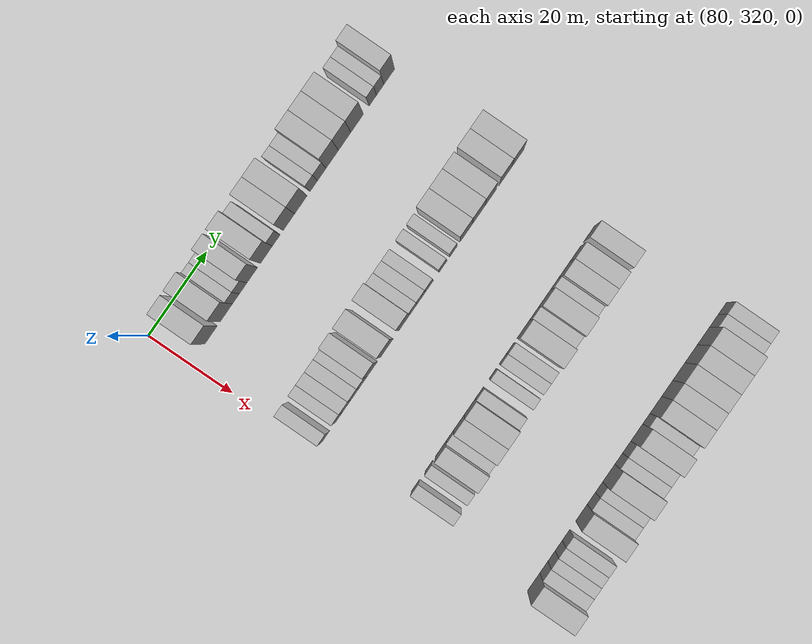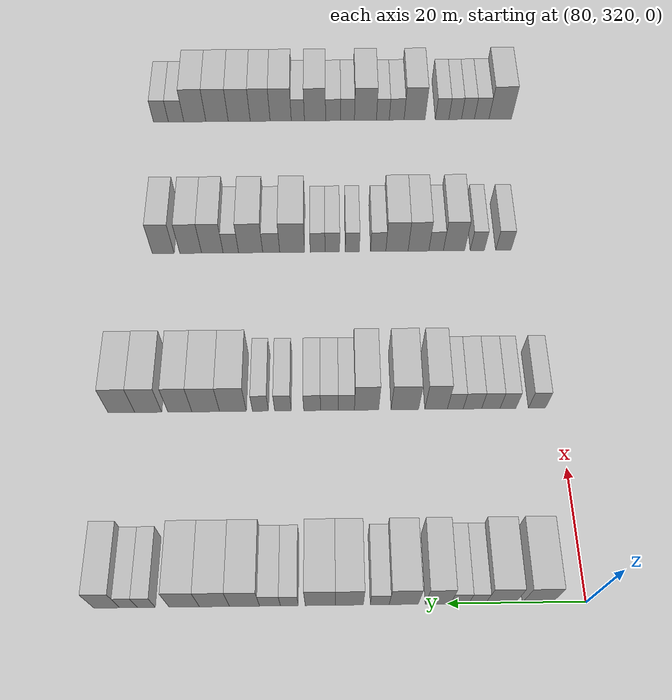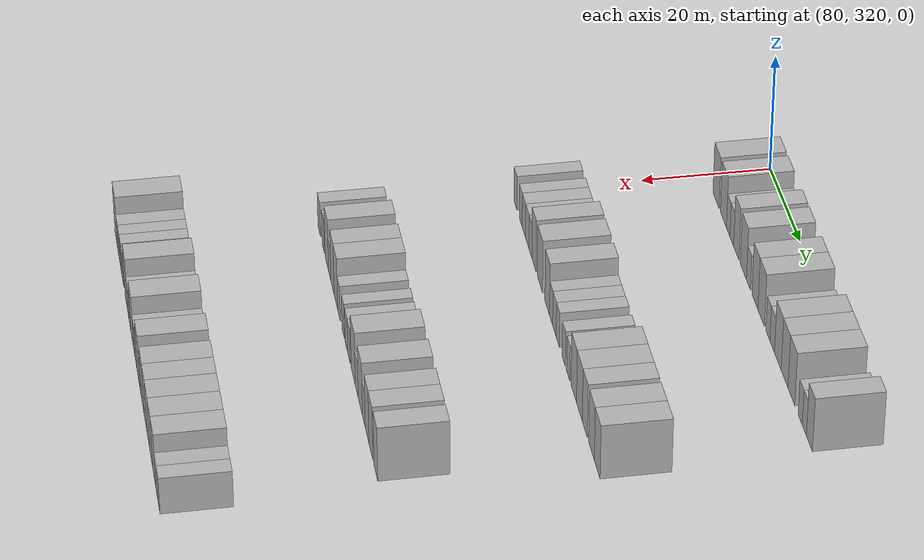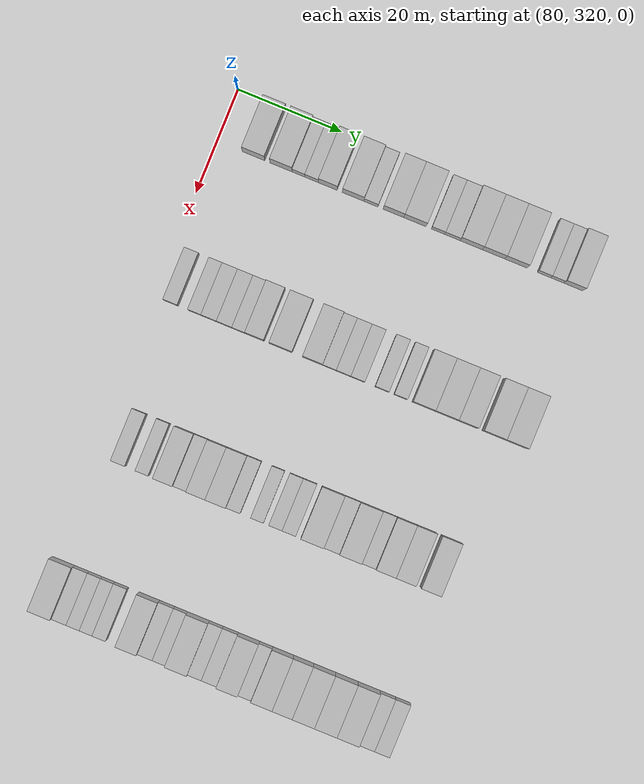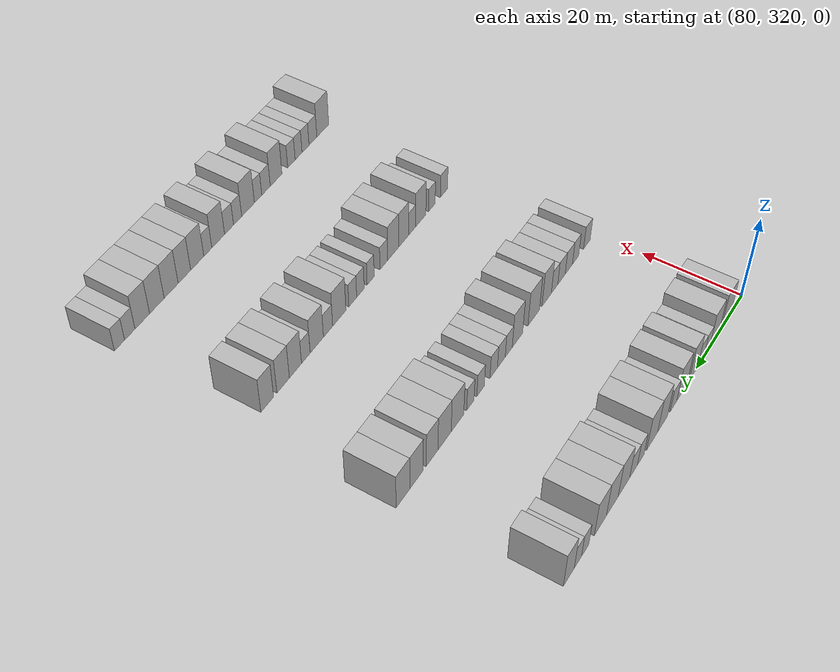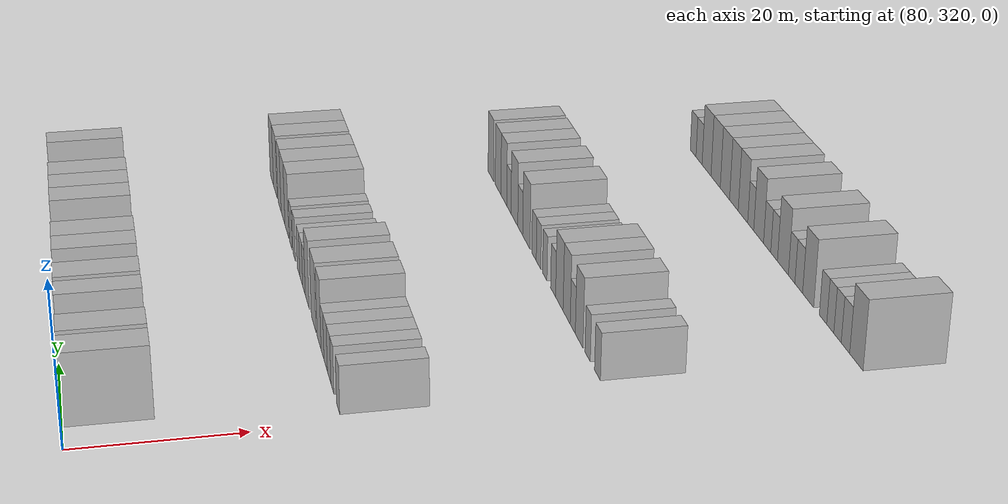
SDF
<sdf version="1.6">
 <world name="default">
  <model name="building_641">
   <static>1</static>
   <pose>85.0000 327.0835 0 0.000000 0.000000 0.000000</pose>
   <link name="link">
    <pose>0 0 4.50 0 0 0</pose>
    <collision name="collision"><geometry><box><size>10.0000 4.3480 9.0000</size></box></geometry></collision>
    <visual name="visual">
     <cast_shadows>0</cast_shadows>
     <geometry><box><size>10.0000 4.3480 9.0000</size></box></geometry>
     <material>
      <script>
       <uri>model://HANNAS_wall/materials/scripts</uri>
       <uri>model://HANNAS_wall/materials/textures</uri>
       <name>vrc/HANNAS_wall</name>
      </script>
     </material>
    </visual>
   </link>
  </model>
  <model name="building_642">
   <static>1</static>
   <pose>85.0000 332.3944 0 0.000000 0.000000 0.000000</pose>
   <link name="link">
    <pose>0 0 4.50 0 0 0</pose>
    <collision name="collision"><geometry><box><size>10.0000 4.2738 9.0000</size></box></geometry></collision>
    <visual name="visual">
     <cast_shadows>0</cast_shadows>
     <geometry><box><size>10.0000 4.2738 9.0000</size></box></geometry>
     <material>
      <script>
       <uri>model://HANNAS_wall/materials/scripts</uri>
       <uri>model://HANNAS_wall/materials/textures</uri>
       <name>vrc/HANNAS_wall</name>
      </script>
     </material>
    </visual>
   </link>
  </model>
  <model name="building_643">
   <static>1</static>
   <pose>85.0000 335.7473 0 0.000000 0.000000 0.000000</pose>
   <link name="link">
    <pose>0 0 3.00 0 0 0</pose>
    <collision name="collision"><geometry><box><size>10.0000 2.4318 6.0000</size></box></geometry></collision>
    <visual name="visual">
     <cast_shadows>0</cast_shadows>
     <geometry><box><size>10.0000 2.4318 6.0000</size></box></geometry>
     <material>
      <script>
       <uri>model://HANNAS_wall/materials/scripts</uri>
       <uri>model://HANNAS_wall/materials/textures</uri>
       <name>vrc/HANNAS_wall</name>
      </script>
     </material>
    </visual>
   </link>
  </model>
  <model name="building_644">
   <static>1</static>
   <pose>85.0000 338.2707 0 0.000000 0.000000 0.000000</pose>
   <link name="link">
    <pose>0 0 3.00 0 0 0</pose>
    <collision name="collision"><geometry><box><size>10.0000 2.6150 6.0000</size></box></geometry></collision>
    <visual name="visual">
     <cast_shadows>0</cast_shadows>
     <geometry><box><size>10.0000 2.6150 6.0000</size></box></geometry>
     <material>
      <script>
       <uri>model://HANNAS_wall/materials/scripts</uri>
       <uri>model://HANNAS_wall/materials/textures</uri>
       <name>vrc/HANNAS_wall</name>
      </script>
     </material>
    </visual>
   </link>
  </model>
  <model name="building_645">
   <static>1</static>
   <pose>85.0000 341.4043 0 0.000000 0.000000 0.000000</pose>
   <link name="link">
    <pose>0 0 4.50 0 0 0</pose>
    <collision name="collision"><geometry><box><size>10.0000 3.6523 9.0000</size></box></geometry></collision>
    <visual name="visual">
     <cast_shadows>0</cast_shadows>
     <geometry><box><size>10.0000 3.6523 9.0000</size></box></geometry>
     <material>
      <script>
       <uri>model://HANNAS_wall/materials/scripts</uri>
       <uri>model://HANNAS_wall/materials/textures</uri>
       <name>vrc/HANNAS_wall</name>
      </script>
     </material>
    </visual>
   </link>
  </model>
  <model name="building_646">
   <static>1</static>
   <pose>85.0000 346.3137 0 0.000000 0.000000 0.000000</pose>
   <link name="link">
    <pose>0 0 4.50 0 0 0</pose>
    <collision name="collision"><geometry><box><size>10.0000 4.1664 9.0000</size></box></geometry></collision>
    <visual name="visual">
     <cast_shadows>0</cast_shadows>
     <geometry><box><size>10.0000 4.1664 9.0000</size></box></geometry>
     <material>
      <script>
       <uri>model://HANNAS_wall/materials/scripts</uri>
       <uri>model://HANNAS_wall/materials/textures</uri>
       <name>vrc/HANNAS_wall</name>
      </script>
     </material>
    </visual>
   </link>
  </model>
  <model name="building_647">
   <static>1</static>
   <pose>85.0000 349.7582 0 0.000000 0.000000 0.000000</pose>
   <link name="link">
    <pose>0 0 3.00 0 0 0</pose>
    <collision name="collision"><geometry><box><size>10.0000 2.7225 6.0000</size></box></geometry></collision>
    <visual name="visual">
     <cast_shadows>0</cast_shadows>
     <geometry><box><size>10.0000 2.7225 6.0000</size></box></geometry>
     <material>
      <script>
       <uri>model://HANNAS_wall/materials/scripts</uri>
       <uri>model://HANNAS_wall/materials/textures</uri>
       <name>vrc/HANNAS_wall</name>
      </script>
     </material>
    </visual>
   </link>
  </model>
  <model name="building_648">
   <static>1</static>
   <pose>85.0000 354.1188 0 0.000000 0.000000 0.000000</pose>
   <link name="link">
    <pose>0 0 4.50 0 0 0</pose>
    <collision name="collision"><geometry><box><size>10.0000 3.9986 9.0000</size></box></geometry></collision>
    <visual name="visual">
     <cast_shadows>0</cast_shadows>
     <geometry><box><size>10.0000 3.9986 9.0000</size></box></geometry>
     <material>
      <script>
       <uri>model://HANNAS_wall/materials/scripts</uri>
       <uri>model://HANNAS_wall/materials/textures</uri>
       <name>vrc/HANNAS_wall</name>
      </script>
     </material>
    </visual>
   </link>
  </model>
  <model name="building_649">
   <static>1</static>
   <pose>85.0000 358.2789 0 0.000000 0.000000 0.000000</pose>
   <link name="link">
    <pose>0 0 4.50 0 0 0</pose>
    <collision name="collision"><geometry><box><size>10.0000 4.3215 9.0000</size></box></geometry></collision>
    <visual name="visual">
     <cast_shadows>0</cast_shadows>
     <geometry><box><size>10.0000 4.3215 9.0000</size></box></geometry>
     <material>
      <script>
       <uri>model://HANNAS_wall/materials/scripts</uri>
       <uri>model://HANNAS_wall/materials/textures</uri>
       <name>vrc/HANNAS_wall</name>
      </script>
     </material>
    </visual>
   </link>
  </model>
  <model name="building_650">
   <static>1</static>
   <pose>85.0000 362.7246 0 0.000000 0.000000 0.000000</pose>
   <link name="link">
    <pose>0 0 3.00 0 0 0</pose>
    <collision name="collision"><geometry><box><size>10.0000 2.5699 6.0000</size></box></geometry></collision>
    <visual name="visual">
     <cast_shadows>0</cast_shadows>
     <geometry><box><size>10.0000 2.5699 6.0000</size></box></geometry>
     <material>
      <script>
       <uri>model://HANNAS_wall/materials/scripts</uri>
       <uri>model://HANNAS_wall/materials/textures</uri>
       <name>vrc/HANNAS_wall</name>
      </script>
     </material>
    </visual>
   </link>
  </model>
  <model name="building_651">
   <static>1</static>
   <pose>85.0000 365.4991 0 0.000000 0.000000 0.000000</pose>
   <link name="link">
    <pose>0 0 3.00 0 0 0</pose>
    <collision name="collision"><geometry><box><size>10.0000 2.9791 6.0000</size></box></geometry></collision>
    <visual name="visual">
     <cast_shadows>0</cast_shadows>
     <geometry><box><size>10.0000 2.9791 6.0000</size></box></geometry>
     <material>
      <script>
       <uri>model://HANNAS_wall/materials/scripts</uri>
       <uri>model://HANNAS_wall/materials/textures</uri>
       <name>vrc/HANNAS_wall</name>
      </script>
     </material>
    </visual>
   </link>
  </model>
  <model name="building_652">
   <static>1</static>
   <pose>85.0000 369.1368 0 0.000000 0.000000 0.000000</pose>
   <link name="link">
    <pose>0 0 4.50 0 0 0</pose>
    <collision name="collision"><geometry><box><size>10.0000 4.2963 9.0000</size></box></geometry></collision>
    <visual name="visual">
     <cast_shadows>0</cast_shadows>
     <geometry><box><size>10.0000 4.2963 9.0000</size></box></geometry>
     <material>
      <script>
       <uri>model://HANNAS_wall/materials/scripts</uri>
       <uri>model://HANNAS_wall/materials/textures</uri>
       <name>vrc/HANNAS_wall</name>
      </script>
     </material>
    </visual>
   </link>
  </model>
  <model name="building_653">
   <static>1</static>
   <pose>85.0000 373.4469 0 0.000000 0.000000 0.000000</pose>
   <link name="link">
    <pose>0 0 4.50 0 0 0</pose>
    <collision name="collision"><geometry><box><size>10.0000 4.3239 9.0000</size></box></geometry></collision>
    <visual name="visual">
     <cast_shadows>0</cast_shadows>
     <geometry><box><size>10.0000 4.3239 9.0000</size></box></geometry>
     <material>
      <script>
       <uri>model://HANNAS_wall/materials/scripts</uri>
       <uri>model://HANNAS_wall/materials/textures</uri>
       <name>vrc/HANNAS_wall</name>
      </script>
     </material>
    </visual>
   </link>
  </model>
  <model name="building_654">
   <static>1</static>
   <pose>85.0000 377.7782 0 0.000000 0.000000 0.000000</pose>
   <link name="link">
    <pose>0 0 4.50 0 0 0</pose>
    <collision name="collision"><geometry><box><size>10.0000 4.3388 9.0000</size></box></geometry></collision>
    <visual name="visual">
     <cast_shadows>0</cast_shadows>
     <geometry><box><size>10.0000 4.3388 9.0000</size></box></geometry>
     <material>
      <script>
       <uri>model://HANNAS_wall/materials/scripts</uri>
       <uri>model://HANNAS_wall/materials/textures</uri>
       <name>vrc/HANNAS_wall</name>
      </script>
     </material>
    </visual>
   </link>
  </model>
  <model name="building_655">
   <static>1</static>
   <pose>85.0000 383.2173 0 0.000000 0.000000 0.000000</pose>
   <link name="link">
    <pose>0 0 3.00 0 0 0</pose>
    <collision name="collision"><geometry><box><size>10.0000 2.5394 6.0000</size></box></geometry></collision>
    <visual name="visual">
     <cast_shadows>0</cast_shadows>
     <geometry><box><size>10.0000 2.5394 6.0000</size></box></geometry>
     <material>
      <script>
       <uri>model://HANNAS_wall/materials/scripts</uri>
       <uri>model://HANNAS_wall/materials/textures</uri>
       <name>vrc/HANNAS_wall</name>
      </script>
     </material>
    </visual>
   </link>
  </model>
  <model name="building_656">
   <static>1</static>
   <pose>85.0000 385.7587 0 0.000000 0.000000 0.000000</pose>
   <link name="link">
    <pose>0 0 3.00 0 0 0</pose>
    <collision name="collision"><geometry><box><size>10.0000 2.5435 6.0000</size></box></geometry></collision>
    <visual name="visual">
     <cast_shadows>0</cast_shadows>
     <geometry><box><size>10.0000 2.5435 6.0000</size></box></geometry>
     <material>
      <script>
       <uri>model://HANNAS_wall/materials/scripts</uri>
       <uri>model://HANNAS_wall/materials/textures</uri>
       <name>vrc/HANNAS_wall</name>
      </script>
     </material>
    </visual>
   </link>
  </model>
  <model name="building_657">
   <static>1</static>
   <pose>85.0000 388.8787 0 0.000000 0.000000 0.000000</pose>
   <link name="link">
    <pose>0 0 4.50 0 0 0</pose>
    <collision name="collision"><geometry><box><size>10.0000 3.6963 9.0000</size></box></geometry></collision>
    <visual name="visual">
     <cast_shadows>0</cast_shadows>
     <geometry><box><size>10.0000 3.6963 9.0000</size></box></geometry>
     <material>
      <script>
       <uri>model://HANNAS_wall/materials/scripts</uri>
       <uri>model://HANNAS_wall/materials/textures</uri>
       <name>vrc/HANNAS_wall</name>
      </script>
     </material>
    </visual>
   </link>
  </model>
  <model name="building_858">
   <static>1</static>
   <pose>115.0000 323.4504 0 0.000000 0.000000 0.000000</pose>
   <link name="link">
    <pose>0 0 3.00 0 0 0</pose>
    <collision name="collision"><geometry><box><size>10.0000 2.7388 6.0000</size></box></geometry></collision>
    <visual name="visual">
     <cast_shadows>0</cast_shadows>
     <geometry><box><size>10.0000 2.7388 6.0000</size></box></geometry>
     <material>
      <script>
       <uri>model://HANNAS_wall/materials/scripts</uri>
       <uri>model://HANNAS_wall/materials/textures</uri>
       <name>vrc/HANNAS_wall</name>
      </script>
     </material>
    </visual>
   </link>
  </model>
  <model name="building_859">
   <static>1</static>
   <pose>115.0000 328.0915 0 0.000000 0.000000 0.000000</pose>
   <link name="link">
    <pose>0 0 3.00 0 0 0</pose>
    <collision name="collision"><geometry><box><size>10.0000 2.5435 6.0000</size></box></geometry></collision>
    <visual name="visual">
     <cast_shadows>0</cast_shadows>
     <geometry><box><size>10.0000 2.5435 6.0000</size></box></geometry>
     <material>
      <script>
       <uri>model://HANNAS_wall/materials/scripts</uri>
       <uri>model://HANNAS_wall/materials/textures</uri>
       <name>vrc/HANNAS_wall</name>
      </script>
     </material>
    </visual>
   </link>
  </model>
  <model name="building_860">
   <static>1</static>
   <pose>115.0000 330.8467 0 0.000000 0.000000 0.000000</pose>
   <link name="link">
    <pose>0 0 3.00 0 0 0</pose>
    <collision name="collision"><geometry><box><size>10.0000 2.9669 6.0000</size></box></geometry></collision>
    <visual name="visual">
     <cast_shadows>0</cast_shadows>
     <geometry><box><size>10.0000 2.9669 6.0000</size></box></geometry>
     <material>
      <script>
       <uri>model://HANNAS_wall/materials/scripts</uri>
       <uri>model://HANNAS_wall/materials/textures</uri>
       <name>vrc/HANNAS_wall</name>
      </script>
     </material>
    </visual>
   </link>
  </model>
  <model name="building_861">
   <static>1</static>
   <pose>115.0000 333.8036 0 0.000000 0.000000 0.000000</pose>
   <link name="link">
    <pose>0 0 3.00 0 0 0</pose>
    <collision name="collision"><geometry><box><size>10.0000 2.9470 6.0000</size></box></geometry></collision>
    <visual name="visual">
     <cast_shadows>0</cast_shadows>
     <geometry><box><size>10.0000 2.9470 6.0000</size></box></geometry>
     <material>
      <script>
       <uri>model://HANNAS_wall/materials/scripts</uri>
       <uri>model://HANNAS_wall/materials/textures</uri>
       <name>vrc/HANNAS_wall</name>
      </script>
     </material>
    </visual>
   </link>
  </model>
  <model name="building_862">
   <static>1</static>
   <pose>115.0000 336.5485 0 0.000000 0.000000 0.000000</pose>
   <link name="link">
    <pose>0 0 3.00 0 0 0</pose>
    <collision name="collision"><geometry><box><size>10.0000 2.5428 6.0000</size></box></geometry></collision>
    <visual name="visual">
     <cast_shadows>0</cast_shadows>
     <geometry><box><size>10.0000 2.5428 6.0000</size></box></geometry>
     <material>
      <script>
       <uri>model://HANNAS_wall/materials/scripts</uri>
       <uri>model://HANNAS_wall/materials/textures</uri>
       <name>vrc/HANNAS_wall</name>
      </script>
     </material>
    </visual>
   </link>
  </model>
  <model name="building_863">
   <static>1</static>
   <pose>115.0000 339.6307 0 0.000000 0.000000 0.000000</pose>
   <link name="link">
    <pose>0 0 4.50 0 0 0</pose>
    <collision name="collision"><geometry><box><size>10.0000 3.6214 9.0000</size></box></geometry></collision>
    <visual name="visual">
     <cast_shadows>0</cast_shadows>
     <geometry><box><size>10.0000 3.6214 9.0000</size></box></geometry>
     <material>
      <script>
       <uri>model://HANNAS_wall/materials/scripts</uri>
       <uri>model://HANNAS_wall/materials/textures</uri>
       <name>vrc/HANNAS_wall</name>
      </script>
     </material>
    </visual>
   </link>
  </model>
  <model name="building_864">
   <static>1</static>
   <pose>115.0000 344.6420 0 0.000000 0.000000 0.000000</pose>
   <link name="link">
    <pose>0 0 4.50 0 0 0</pose>
    <collision name="collision"><geometry><box><size>10.0000 4.4013 9.0000</size></box></geometry></collision>
    <visual name="visual">
     <cast_shadows>0</cast_shadows>
     <geometry><box><size>10.0000 4.4013 9.0000</size></box></geometry>
     <material>
      <script>
       <uri>model://HANNAS_wall/materials/scripts</uri>
       <uri>model://HANNAS_wall/materials/textures</uri>
       <name>vrc/HANNAS_wall</name>
      </script>
     </material>
    </visual>
   </link>
  </model>
  <model name="building_865">
   <static>1</static>
   <pose>115.0000 350.7802 0 0.000000 0.000000 0.000000</pose>
   <link name="link">
    <pose>0 0 4.50 0 0 0</pose>
    <collision name="collision"><geometry><box><size>10.0000 3.8751 9.0000</size></box></geometry></collision>
    <visual name="visual">
     <cast_shadows>0</cast_shadows>
     <geometry><box><size>10.0000 3.8751 9.0000</size></box></geometry>
     <material>
      <script>
       <uri>model://HANNAS_wall/materials/scripts</uri>
       <uri>model://HANNAS_wall/materials/textures</uri>
       <name>vrc/HANNAS_wall</name>
      </script>
     </material>
    </visual>
   </link>
  </model>
  <model name="building_866">
   <static>1</static>
   <pose>115.0000 354.0044 0 0.000000 0.000000 0.000000</pose>
   <link name="link">
    <pose>0 0 3.00 0 0 0</pose>
    <collision name="collision"><geometry><box><size>10.0000 2.5733 6.0000</size></box></geometry></collision>
    <visual name="visual">
     <cast_shadows>0</cast_shadows>
     <geometry><box><size>10.0000 2.5733 6.0000</size></box></geometry>
     <material>
      <script>
       <uri>model://HANNAS_wall/materials/scripts</uri>
       <uri>model://HANNAS_wall/materials/textures</uri>
       <name>vrc/HANNAS_wall</name>
      </script>
     </material>
    </visual>
   </link>
  </model>
  <model name="building_867">
   <static>1</static>
   <pose>115.0000 356.7037 0 0.000000 0.000000 0.000000</pose>
   <link name="link">
    <pose>0 0 3.00 0 0 0</pose>
    <collision name="collision"><geometry><box><size>10.0000 2.8254 6.0000</size></box></geometry></collision>
    <visual name="visual">
     <cast_shadows>0</cast_shadows>
     <geometry><box><size>10.0000 2.8254 6.0000</size></box></geometry>
     <material>
      <script>
       <uri>model://HANNAS_wall/materials/scripts</uri>
       <uri>model://HANNAS_wall/materials/textures</uri>
       <name>vrc/HANNAS_wall</name>
      </script>
     </material>
    </visual>
   </link>
  </model>
  <model name="building_868">
   <static>1</static>
   <pose>115.0000 359.4641 0 0.000000 0.000000 0.000000</pose>
   <link name="link">
    <pose>0 0 3.00 0 0 0</pose>
    <collision name="collision"><geometry><box><size>10.0000 2.6953 6.0000</size></box></geometry></collision>
    <visual name="visual">
     <cast_shadows>0</cast_shadows>
     <geometry><box><size>10.0000 2.6953 6.0000</size></box></geometry>
     <material>
      <script>
       <uri>model://HANNAS_wall/materials/scripts</uri>
       <uri>model://HANNAS_wall/materials/textures</uri>
       <name>vrc/HANNAS_wall</name>
      </script>
     </material>
    </visual>
   </link>
  </model>
  <model name="building_869">
   <static>1</static>
   <pose>115.0000 364.1347 0 0.000000 0.000000 0.000000</pose>
   <link name="link">
    <pose>0 0 3.00 0 0 0</pose>
    <collision name="collision"><geometry><box><size>10.0000 2.6460 6.0000</size></box></geometry></collision>
    <visual name="visual">
     <cast_shadows>0</cast_shadows>
     <geometry><box><size>10.0000 2.6460 6.0000</size></box></geometry>
     <material>
      <script>
       <uri>model://HANNAS_wall/materials/scripts</uri>
       <uri>model://HANNAS_wall/materials/textures</uri>
       <name>vrc/HANNAS_wall</name>
      </script>
     </material>
    </visual>
   </link>
  </model>
  <model name="building_870">
   <static>1</static>
   <pose>115.0000 367.7292 0 0.000000 0.000000 0.000000</pose>
   <link name="link">
    <pose>0 0 3.00 0 0 0</pose>
    <collision name="collision"><geometry><box><size>10.0000 2.5431 6.0000</size></box></geometry></collision>
    <visual name="visual">
     <cast_shadows>0</cast_shadows>
     <geometry><box><size>10.0000 2.5431 6.0000</size></box></geometry>
     <material>
      <script>
       <uri>model://HANNAS_wall/materials/scripts</uri>
       <uri>model://HANNAS_wall/materials/textures</uri>
       <name>vrc/HANNAS_wall</name>
      </script>
     </material>
    </visual>
   </link>
  </model>
  <model name="building_871">
   <static>1</static>
   <pose>115.0000 372.1382 0 0.000000 0.000000 0.000000</pose>
   <link name="link">
    <pose>0 0 4.50 0 0 0</pose>
    <collision name="collision"><geometry><box><size>10.0000 4.2748 9.0000</size></box></geometry></collision>
    <visual name="visual">
     <cast_shadows>0</cast_shadows>
     <geometry><box><size>10.0000 4.2748 9.0000</size></box></geometry>
     <material>
      <script>
       <uri>model://HANNAS_wall/materials/scripts</uri>
       <uri>model://HANNAS_wall/materials/textures</uri>
       <name>vrc/HANNAS_wall</name>
      </script>
     </material>
    </visual>
   </link>
  </model>
  <model name="building_872">
   <static>1</static>
   <pose>115.0000 376.4877 0 0.000000 0.000000 0.000000</pose>
   <link name="link">
    <pose>0 0 4.50 0 0 0</pose>
    <collision name="collision"><geometry><box><size>10.0000 4.4242 9.0000</size></box></geometry></collision>
    <visual name="visual">
     <cast_shadows>0</cast_shadows>
     <geometry><box><size>10.0000 4.4242 9.0000</size></box></geometry>
     <material>
      <script>
       <uri>model://HANNAS_wall/materials/scripts</uri>
       <uri>model://HANNAS_wall/materials/textures</uri>
       <name>vrc/HANNAS_wall</name>
      </script>
     </material>
    </visual>
   </link>
  </model>
  <model name="building_873">
   <static>1</static>
   <pose>115.0000 380.6151 0 0.000000 0.000000 0.000000</pose>
   <link name="link">
    <pose>0 0 4.50 0 0 0</pose>
    <collision name="collision"><geometry><box><size>10.0000 3.8306 9.0000</size></box></geometry></collision>
    <visual name="visual">
     <cast_shadows>0</cast_shadows>
     <geometry><box><size>10.0000 3.8306 9.0000</size></box></geometry>
     <material>
      <script>
       <uri>model://HANNAS_wall/materials/scripts</uri>
       <uri>model://HANNAS_wall/materials/textures</uri>
       <name>vrc/HANNAS_wall</name>
      </script>
     </material>
    </visual>
   </link>
  </model>
  <model name="building_874">
   <static>1</static>
   <pose>115.0000 385.6731 0 0.000000 0.000000 0.000000</pose>
   <link name="link">
    <pose>0 0 4.50 0 0 0</pose>
    <collision name="collision"><geometry><box><size>10.0000 4.2855 9.0000</size></box></geometry></collision>
    <visual name="visual">
     <cast_shadows>0</cast_shadows>
     <geometry><box><size>10.0000 4.2855 9.0000</size></box></geometry>
     <material>
      <script>
       <uri>model://HANNAS_wall/materials/scripts</uri>
       <uri>model://HANNAS_wall/materials/textures</uri>
       <name>vrc/HANNAS_wall</name>
      </script>
     </material>
    </visual>
   </link>
  </model>
  <model name="building_875">
   <static>1</static>
   <pose>115.0000 389.9492 0 0.000000 0.000000 0.000000</pose>
   <link name="link">
    <pose>0 0 4.50 0 0 0</pose>
    <collision name="collision"><geometry><box><size>10.0000 4.2667 9.0000</size></box></geometry></collision>
    <visual name="visual">
     <cast_shadows>0</cast_shadows>
     <geometry><box><size>10.0000 4.2667 9.0000</size></box></geometry>
     <material>
      <script>
       <uri>model://HANNAS_wall/materials/scripts</uri>
       <uri>model://HANNAS_wall/materials/textures</uri>
       <name>vrc/HANNAS_wall</name>
      </script>
     </material>
    </visual>
   </link>
  </model>
  <model name="building_1084">
   <static>1</static>
   <pose>145.0000 325.6955 0 0.000000 0.000000 0.000000</pose>
   <link name="link">
    <pose>0 0 3.00 0 0 0</pose>
    <collision name="collision"><geometry><box><size>10.0000 2.7199 6.0000</size></box></geometry></collision>
    <visual name="visual">
     <cast_shadows>0</cast_shadows>
     <geometry><box><size>10.0000 2.7199 6.0000</size></box></geometry>
     <material>
      <script>
       <uri>model://HANNAS_wall/materials/scripts</uri>
       <uri>model://HANNAS_wall/materials/textures</uri>
       <name>vrc/HANNAS_wall</name>
      </script>
     </material>
    </visual>
   </link>
  </model>
  <model name="building_1085">
   <static>1</static>
   <pose>145.0000 330.3037 0 0.000000 0.000000 0.000000</pose>
   <link name="link">
    <pose>0 0 3.00 0 0 0</pose>
    <collision name="collision"><geometry><box><size>10.0000 2.4966 6.0000</size></box></geometry></collision>
    <visual name="visual">
     <cast_shadows>0</cast_shadows>
     <geometry><box><size>10.0000 2.4966 6.0000</size></box></geometry>
     <material>
      <script>
       <uri>model://HANNAS_wall/materials/scripts</uri>
       <uri>model://HANNAS_wall/materials/textures</uri>
       <name>vrc/HANNAS_wall</name>
      </script>
     </material>
    </visual>
   </link>
  </model>
  <model name="building_1086">
   <static>1</static>
   <pose>145.0000 334.4331 0 0.000000 0.000000 0.000000</pose>
   <link name="link">
    <pose>0 0 4.50 0 0 0</pose>
    <collision name="collision"><geometry><box><size>10.0000 3.7621 9.0000</size></box></geometry></collision>
    <visual name="visual">
     <cast_shadows>0</cast_shadows>
     <geometry><box><size>10.0000 3.7621 9.0000</size></box></geometry>
     <material>
      <script>
       <uri>model://HANNAS_wall/materials/scripts</uri>
       <uri>model://HANNAS_wall/materials/textures</uri>
       <name>vrc/HANNAS_wall</name>
      </script>
     </material>
    </visual>
   </link>
  </model>
  <model name="building_1087">
   <static>1</static>
   <pose>145.0000 337.5975 0 0.000000 0.000000 0.000000</pose>
   <link name="link">
    <pose>0 0 3.00 0 0 0</pose>
    <collision name="collision"><geometry><box><size>10.0000 2.5667 6.0000</size></box></geometry></collision>
    <visual name="visual">
     <cast_shadows>0</cast_shadows>
     <geometry><box><size>10.0000 2.5667 6.0000</size></box></geometry>
     <material>
      <script>
       <uri>model://HANNAS_wall/materials/scripts</uri>
       <uri>model://HANNAS_wall/materials/textures</uri>
       <name>vrc/HANNAS_wall</name>
      </script>
     </material>
    </visual>
   </link>
  </model>
  <model name="building_1088">
   <static>1</static>
   <pose>145.0000 340.7137 0 0.000000 0.000000 0.000000</pose>
   <link name="link">
    <pose>0 0 4.50 0 0 0</pose>
    <collision name="collision"><geometry><box><size>10.0000 3.6656 9.0000</size></box></geometry></collision>
    <visual name="visual">
     <cast_shadows>0</cast_shadows>
     <geometry><box><size>10.0000 3.6656 9.0000</size></box></geometry>
     <material>
      <script>
       <uri>model://HANNAS_wall/materials/scripts</uri>
       <uri>model://HANNAS_wall/materials/textures</uri>
       <name>vrc/HANNAS_wall</name>
      </script>
     </material>
    </visual>
   </link>
  </model>
  <model name="building_1089">
   <static>1</static>
   <pose>145.0000 344.5123 0 0.000000 0.000000 0.000000</pose>
   <link name="link">
    <pose>0 0 4.50 0 0 0</pose>
    <collision name="collision"><geometry><box><size>10.0000 3.9318 9.0000</size></box></geometry></collision>
    <visual name="visual">
     <cast_shadows>0</cast_shadows>
     <geometry><box><size>10.0000 3.9318 9.0000</size></box></geometry>
     <material>
      <script>
       <uri>model://HANNAS_wall/materials/scripts</uri>
       <uri>model://HANNAS_wall/materials/textures</uri>
       <name>vrc/HANNAS_wall</name>
      </script>
     </material>
    </visual>
   </link>
  </model>
  <model name="building_1090">
   <static>1</static>
   <pose>145.0000 347.8252 0 0.000000 0.000000 0.000000</pose>
   <link name="link">
    <pose>0 0 3.00 0 0 0</pose>
    <collision name="collision"><geometry><box><size>10.0000 2.6939 6.0000</size></box></geometry></collision>
    <visual name="visual">
     <cast_shadows>0</cast_shadows>
     <geometry><box><size>10.0000 2.6939 6.0000</size></box></geometry>
     <material>
      <script>
       <uri>model://HANNAS_wall/materials/scripts</uri>
       <uri>model://HANNAS_wall/materials/textures</uri>
       <name>vrc/HANNAS_wall</name>
      </script>
     </material>
    </visual>
   </link>
  </model>
  <model name="building_1091">
   <static>1</static>
   <pose>145.0000 352.4085 0 0.000000 0.000000 0.000000</pose>
   <link name="link">
    <pose>0 0 3.00 0 0 0</pose>
    <collision name="collision"><geometry><box><size>10.0000 2.4729 6.0000</size></box></geometry></collision>
    <visual name="visual">
     <cast_shadows>0</cast_shadows>
     <geometry><box><size>10.0000 2.4729 6.0000</size></box></geometry>
     <material>
      <script>
       <uri>model://HANNAS_wall/materials/scripts</uri>
       <uri>model://HANNAS_wall/materials/textures</uri>
       <name>vrc/HANNAS_wall</name>
      </script>
     </material>
    </visual>
   </link>
  </model>
  <model name="building_1092">
   <static>1</static>
   <pose>145.0000 355.9290 0 0.000000 0.000000 0.000000</pose>
   <link name="link">
    <pose>0 0 3.00 0 0 0</pose>
    <collision name="collision"><geometry><box><size>10.0000 2.5680 6.0000</size></box></geometry></collision>
    <visual name="visual">
     <cast_shadows>0</cast_shadows>
     <geometry><box><size>10.0000 2.5680 6.0000</size></box></geometry>
     <material>
      <script>
       <uri>model://HANNAS_wall/materials/scripts</uri>
       <uri>model://HANNAS_wall/materials/textures</uri>
       <name>vrc/HANNAS_wall</name>
      </script>
     </material>
    </visual>
   </link>
  </model>
  <model name="building_1093">
   <static>1</static>
   <pose>145.0000 358.5207 0 0.000000 0.000000 0.000000</pose>
   <link name="link">
    <pose>0 0 3.00 0 0 0</pose>
    <collision name="collision"><geometry><box><size>10.0000 2.6156 6.0000</size></box></geometry></collision>
    <visual name="visual">
     <cast_shadows>0</cast_shadows>
     <geometry><box><size>10.0000 2.6156 6.0000</size></box></geometry>
     <material>
      <script>
       <uri>model://HANNAS_wall/materials/scripts</uri>
       <uri>model://HANNAS_wall/materials/textures</uri>
       <name>vrc/HANNAS_wall</name>
      </script>
     </material>
    </visual>
   </link>
  </model>
  <model name="building_1094">
   <static>1</static>
   <pose>145.0000 363.0227 0 0.000000 0.000000 0.000000</pose>
   <link name="link">
    <pose>0 0 4.50 0 0 0</pose>
    <collision name="collision"><geometry><box><size>10.0000 4.3883 9.0000</size></box></geometry></collision>
    <visual name="visual">
     <cast_shadows>0</cast_shadows>
     <geometry><box><size>10.0000 4.3883 9.0000</size></box></geometry>
     <material>
      <script>
       <uri>model://HANNAS_wall/materials/scripts</uri>
       <uri>model://HANNAS_wall/materials/textures</uri>
       <name>vrc/HANNAS_wall</name>
      </script>
     </material>
    </visual>
   </link>
  </model>
  <model name="building_1095">
   <static>1</static>
   <pose>145.0000 366.7168 0 0.000000 0.000000 0.000000</pose>
   <link name="link">
    <pose>0 0 3.00 0 0 0</pose>
    <collision name="collision"><geometry><box><size>10.0000 2.9999 6.0000</size></box></geometry></collision>
    <visual name="visual">
     <cast_shadows>0</cast_shadows>
     <geometry><box><size>10.0000 2.9999 6.0000</size></box></geometry>
     <material>
      <script>
       <uri>model://HANNAS_wall/materials/scripts</uri>
       <uri>model://HANNAS_wall/materials/textures</uri>
       <name>vrc/HANNAS_wall</name>
      </script>
     </material>
    </visual>
   </link>
  </model>
  <model name="building_1096">
   <static>1</static>
   <pose>145.0000 370.3455 0 0.000000 0.000000 0.000000</pose>
   <link name="link">
    <pose>0 0 4.50 0 0 0</pose>
    <collision name="collision"><geometry><box><size>10.0000 4.2575 9.0000</size></box></geometry></collision>
    <visual name="visual">
     <cast_shadows>0</cast_shadows>
     <geometry><box><size>10.0000 4.2575 9.0000</size></box></geometry>
     <material>
      <script>
       <uri>model://HANNAS_wall/materials/scripts</uri>
       <uri>model://HANNAS_wall/materials/textures</uri>
       <name>vrc/HANNAS_wall</name>
      </script>
     </material>
    </visual>
   </link>
  </model>
  <model name="building_1097">
   <static>1</static>
   <pose>145.0000 373.8391 0 0.000000 0.000000 0.000000</pose>
   <link name="link">
    <pose>0 0 3.00 0 0 0</pose>
    <collision name="collision"><geometry><box><size>10.0000 2.7296 6.0000</size></box></geometry></collision>
    <visual name="visual">
     <cast_shadows>0</cast_shadows>
     <geometry><box><size>10.0000 2.7296 6.0000</size></box></geometry>
     <material>
      <script>
       <uri>model://HANNAS_wall/materials/scripts</uri>
       <uri>model://HANNAS_wall/materials/textures</uri>
       <name>vrc/HANNAS_wall</name>
      </script>
     </material>
    </visual>
   </link>
  </model>
  <model name="building_1098">
   <static>1</static>
   <pose>145.0000 377.0995 0 0.000000 0.000000 0.000000</pose>
   <link name="link">
    <pose>0 0 4.50 0 0 0</pose>
    <collision name="collision"><geometry><box><size>10.0000 3.7912 9.0000</size></box></geometry></collision>
    <visual name="visual">
     <cast_shadows>0</cast_shadows>
     <geometry><box><size>10.0000 3.7912 9.0000</size></box></geometry>
     <material>
      <script>
       <uri>model://HANNAS_wall/materials/scripts</uri>
       <uri>model://HANNAS_wall/materials/textures</uri>
       <name>vrc/HANNAS_wall</name>
      </script>
     </material>
    </visual>
   </link>
  </model>
  <model name="building_1099">
   <static>1</static>
   <pose>145.0000 380.9121 0 0.000000 0.000000 0.000000</pose>
   <link name="link">
    <pose>0 0 4.50 0 0 0</pose>
    <collision name="collision"><geometry><box><size>10.0000 3.8341 9.0000</size></box></geometry></collision>
    <visual name="visual">
     <cast_shadows>0</cast_shadows>
     <geometry><box><size>10.0000 3.8341 9.0000</size></box></geometry>
     <material>
      <script>
       <uri>model://HANNAS_wall/materials/scripts</uri>
       <uri>model://HANNAS_wall/materials/textures</uri>
       <name>vrc/HANNAS_wall</name>
      </script>
     </material>
    </visual>
   </link>
  </model>
  <model name="building_1100">
   <static>1</static>
   <pose>145.0000 385.7484 0 0.000000 0.000000 0.000000</pose>
   <link name="link">
    <pose>0 0 4.50 0 0 0</pose>
    <collision name="collision"><geometry><box><size>10.0000 3.8385 9.0000</size></box></geometry></collision>
    <visual name="visual">
     <cast_shadows>0</cast_shadows>
     <geometry><box><size>10.0000 3.8385 9.0000</size></box></geometry>
     <material>
      <script>
       <uri>model://HANNAS_wall/materials/scripts</uri>
       <uri>model://HANNAS_wall/materials/textures</uri>
       <name>vrc/HANNAS_wall</name>
      </script>
     </material>
    </visual>
   </link>
  </model>
  <model name="building_1323">
   <static>1</static>
   <pose>175.0000 323.1653 0 0.000000 0.000000 0.000000</pose>
   <link name="link">
    <pose>0 0 4.50 0 0 0</pose>
    <collision name="collision"><geometry><box><size>10.0000 4.3554 9.0000</size></box></geometry></collision>
    <visual name="visual">
     <cast_shadows>0</cast_shadows>
     <geometry><box><size>10.0000 4.3554 9.0000</size></box></geometry>
     <material>
      <script>
       <uri>model://HANNAS_wall/materials/scripts</uri>
       <uri>model://HANNAS_wall/materials/textures</uri>
       <name>vrc/HANNAS_wall</name>
      </script>
     </material>
    </visual>
   </link>
  </model>
  <model name="building_1324">
   <static>1</static>
   <pose>175.0000 326.7488 0 0.000000 0.000000 0.000000</pose>
   <link name="link">
    <pose>0 0 3.00 0 0 0</pose>
    <collision name="collision"><geometry><box><size>10.0000 2.8116 6.0000</size></box></geometry></collision>
    <visual name="visual">
     <cast_shadows>0</cast_shadows>
     <geometry><box><size>10.0000 2.8116 6.0000</size></box></geometry>
     <material>
      <script>
       <uri>model://HANNAS_wall/materials/scripts</uri>
       <uri>model://HANNAS_wall/materials/textures</uri>
       <name>vrc/HANNAS_wall</name>
      </script>
     </material>
    </visual>
   </link>
  </model>
  <model name="building_1325">
   <static>1</static>
   <pose>175.0000 329.4085 0 0.000000 0.000000 0.000000</pose>
   <link name="link">
    <pose>0 0 3.00 0 0 0</pose>
    <collision name="collision"><geometry><box><size>10.0000 2.5078 6.0000</size></box></geometry></collision>
    <visual name="visual">
     <cast_shadows>0</cast_shadows>
     <geometry><box><size>10.0000 2.5078 6.0000</size></box></geometry>
     <material>
      <script>
       <uri>model://HANNAS_wall/materials/scripts</uri>
       <uri>model://HANNAS_wall/materials/textures</uri>
       <name>vrc/HANNAS_wall</name>
      </script>
     </material>
    </visual>
   </link>
  </model>
  <model name="building_1326">
   <static>1</static>
   <pose>175.0000 331.8836 0 0.000000 0.000000 0.000000</pose>
   <link name="link">
    <pose>0 0 3.00 0 0 0</pose>
    <collision name="collision"><geometry><box><size>10.0000 2.4424 6.0000</size></box></geometry></collision>
    <visual name="visual">
     <cast_shadows>0</cast_shadows>
     <geometry><box><size>10.0000 2.4424 6.0000</size></box></geometry>
     <material>
      <script>
       <uri>model://HANNAS_wall/materials/scripts</uri>
       <uri>model://HANNAS_wall/materials/textures</uri>
       <name>vrc/HANNAS_wall</name>
      </script>
     </material>
    </visual>
   </link>
  </model>
  <model name="building_1327">
   <static>1</static>
   <pose>175.0000 334.4055 0 0.000000 0.000000 0.000000</pose>
   <link name="link">
    <pose>0 0 3.00 0 0 0</pose>
    <collision name="collision"><geometry><box><size>10.0000 2.6013 6.0000</size></box></geometry></collision>
    <visual name="visual">
     <cast_shadows>0</cast_shadows>
     <geometry><box><size>10.0000 2.6013 6.0000</size></box></geometry>
     <material>
      <script>
       <uri>model://HANNAS_wall/materials/scripts</uri>
       <uri>model://HANNAS_wall/materials/textures</uri>
       <name>vrc/HANNAS_wall</name>
      </script>
     </material>
    </visual>
   </link>
  </model>
  <model name="building_1328">
   <static>1</static>
   <pose>175.0000 339.7313 0 0.000000 0.000000 0.000000</pose>
   <link name="link">
    <pose>0 0 4.50 0 0 0</pose>
    <collision name="collision"><geometry><box><size>10.0000 4.0503 9.0000</size></box></geometry></collision>
    <visual name="visual">
     <cast_shadows>0</cast_shadows>
     <geometry><box><size>10.0000 4.0503 9.0000</size></box></geometry>
     <material>
      <script>
       <uri>model://HANNAS_wall/materials/scripts</uri>
       <uri>model://HANNAS_wall/materials/textures</uri>
       <name>vrc/HANNAS_wall</name>
      </script>
     </material>
    </visual>
   </link>
  </model>
  <model name="building_1329">
   <static>1</static>
   <pose>175.0000 343.1901 0 0.000000 0.000000 0.000000</pose>
   <link name="link">
    <pose>0 0 3.00 0 0 0</pose>
    <collision name="collision"><geometry><box><size>10.0000 2.8674 6.0000</size></box></geometry></collision>
    <visual name="visual">
     <cast_shadows>0</cast_shadows>
     <geometry><box><size>10.0000 2.8674 6.0000</size></box></geometry>
     <material>
      <script>
       <uri>model://HANNAS_wall/materials/scripts</uri>
       <uri>model://HANNAS_wall/materials/textures</uri>
       <name>vrc/HANNAS_wall</name>
      </script>
     </material>
    </visual>
   </link>
  </model>
  <model name="building_1330">
   <static>1</static>
   <pose>175.0000 345.8640 0 0.000000 0.000000 0.000000</pose>
   <link name="link">
    <pose>0 0 3.00 0 0 0</pose>
    <collision name="collision"><geometry><box><size>10.0000 2.4804 6.0000</size></box></geometry></collision>
    <visual name="visual">
     <cast_shadows>0</cast_shadows>
     <geometry><box><size>10.0000 2.4804 6.0000</size></box></geometry>
     <material>
      <script>
       <uri>model://HANNAS_wall/materials/scripts</uri>
       <uri>model://HANNAS_wall/materials/textures</uri>
       <name>vrc/HANNAS_wall</name>
      </script>
     </material>
    </visual>
   </link>
  </model>
  <model name="building_1331">
   <static>1</static>
   <pose>175.0000 349.2274 0 0.000000 0.000000 0.000000</pose>
   <link name="link">
    <pose>0 0 4.50 0 0 0</pose>
    <collision name="collision"><geometry><box><size>10.0000 4.2464 9.0000</size></box></geometry></collision>
    <visual name="visual">
     <cast_shadows>0</cast_shadows>
     <geometry><box><size>10.0000 4.2464 9.0000</size></box></geometry>
     <material>
      <script>
       <uri>model://HANNAS_wall/materials/scripts</uri>
       <uri>model://HANNAS_wall/materials/textures</uri>
       <name>vrc/HANNAS_wall</name>
      </script>
     </material>
    </visual>
   </link>
  </model>
  <model name="building_1332">
   <static>1</static>
   <pose>175.0000 352.6800 0 0.000000 0.000000 0.000000</pose>
   <link name="link">
    <pose>0 0 3.00 0 0 0</pose>
    <collision name="collision"><geometry><box><size>10.0000 2.6588 6.0000</size></box></geometry></collision>
    <visual name="visual">
     <cast_shadows>0</cast_shadows>
     <geometry><box><size>10.0000 2.6588 6.0000</size></box></geometry>
     <material>
      <script>
       <uri>model://HANNAS_wall/materials/scripts</uri>
       <uri>model://HANNAS_wall/materials/textures</uri>
       <name>vrc/HANNAS_wall</name>
      </script>
     </material>
    </visual>
   </link>
  </model>
  <model name="building_1333">
   <static>1</static>
   <pose>175.0000 355.4643 0 0.000000 0.000000 0.000000</pose>
   <link name="link">
    <pose>0 0 3.00 0 0 0</pose>
    <collision name="collision"><geometry><box><size>10.0000 2.9099 6.0000</size></box></geometry></collision>
    <visual name="visual">
     <cast_shadows>0</cast_shadows>
     <geometry><box><size>10.0000 2.9099 6.0000</size></box></geometry>
     <material>
      <script>
       <uri>model://HANNAS_wall/materials/scripts</uri>
       <uri>model://HANNAS_wall/materials/textures</uri>
       <name>vrc/HANNAS_wall</name>
      </script>
     </material>
    </visual>
   </link>
  </model>
  <model name="building_1334">
   <static>1</static>
   <pose>175.0000 358.9617 0 0.000000 0.000000 0.000000</pose>
   <link name="link">
    <pose>0 0 4.50 0 0 0</pose>
    <collision name="collision"><geometry><box><size>10.0000 4.0850 9.0000</size></box></geometry></collision>
    <visual name="visual">
     <cast_shadows>0</cast_shadows>
     <geometry><box><size>10.0000 4.0850 9.0000</size></box></geometry>
     <material>
      <script>
       <uri>model://HANNAS_wall/materials/scripts</uri>
       <uri>model://HANNAS_wall/materials/textures</uri>
       <name>vrc/HANNAS_wall</name>
      </script>
     </material>
    </visual>
   </link>
  </model>
  <model name="building_1335">
   <static>1</static>
   <pose>175.0000 362.2704 0 0.000000 0.000000 0.000000</pose>
   <link name="link">
    <pose>0 0 3.00 0 0 0</pose>
    <collision name="collision"><geometry><box><size>10.0000 2.5324 6.0000</size></box></geometry></collision>
    <visual name="visual">
     <cast_shadows>0</cast_shadows>
     <geometry><box><size>10.0000 2.5324 6.0000</size></box></geometry>
     <material>
      <script>
       <uri>model://HANNAS_wall/materials/scripts</uri>
       <uri>model://HANNAS_wall/materials/textures</uri>
       <name>vrc/HANNAS_wall</name>
      </script>
     </material>
    </visual>
   </link>
  </model>
  <model name="building_1336">
   <static>1</static>
   <pose>175.0000 365.5810 0 0.000000 0.000000 0.000000</pose>
   <link name="link">
    <pose>0 0 4.50 0 0 0</pose>
    <collision name="collision"><geometry><box><size>10.0000 4.0886 9.0000</size></box></geometry></collision>
    <visual name="visual">
     <cast_shadows>0</cast_shadows>
     <geometry><box><size>10.0000 4.0886 9.0000</size></box></geometry>
     <material>
      <script>
       <uri>model://HANNAS_wall/materials/scripts</uri>
       <uri>model://HANNAS_wall/materials/textures</uri>
       <name>vrc/HANNAS_wall</name>
      </script>
     </material>
    </visual>
   </link>
  </model>
  <model name="building_1337">
   <static>1</static>
   <pose>175.0000 369.5443 0 0.000000 0.000000 0.000000</pose>
   <link name="link">
    <pose>0 0 4.50 0 0 0</pose>
    <collision name="collision"><geometry><box><size>10.0000 3.8381 9.0000</size></box></geometry></collision>
    <visual name="visual">
     <cast_shadows>0</cast_shadows>
     <geometry><box><size>10.0000 3.8381 9.0000</size></box></geometry>
     <material>
      <script>
       <uri>model://HANNAS_wall/materials/scripts</uri>
       <uri>model://HANNAS_wall/materials/textures</uri>
       <name>vrc/HANNAS_wall</name>
      </script>
     </material>
    </visual>
   </link>
  </model>
  <model name="building_1338">
   <static>1</static>
   <pose>175.0000 373.5795 0 0.000000 0.000000 0.000000</pose>
   <link name="link">
    <pose>0 0 4.50 0 0 0</pose>
    <collision name="collision"><geometry><box><size>10.0000 4.2323 9.0000</size></box></geometry></collision>
    <visual name="visual">
     <cast_shadows>0</cast_shadows>
     <geometry><box><size>10.0000 4.2323 9.0000</size></box></geometry>
     <material>
      <script>
       <uri>model://HANNAS_wall/materials/scripts</uri>
       <uri>model://HANNAS_wall/materials/textures</uri>
       <name>vrc/HANNAS_wall</name>
      </script>
     </material>
    </visual>
   </link>
  </model>
  <model name="building_1339">
   <static>1</static>
   <pose>175.0000 377.8520 0 0.000000 0.000000 0.000000</pose>
   <link name="link">
    <pose>0 0 4.50 0 0 0</pose>
    <collision name="collision"><geometry><box><size>10.0000 4.3127 9.0000</size></box></geometry></collision>
    <visual name="visual">
     <cast_shadows>0</cast_shadows>
     <geometry><box><size>10.0000 4.3127 9.0000</size></box></geometry>
     <material>
      <script>
       <uri>model://HANNAS_wall/materials/scripts</uri>
       <uri>model://HANNAS_wall/materials/textures</uri>
       <name>vrc/HANNAS_wall</name>
      </script>
     </material>
    </visual>
   </link>
  </model>
  <model name="building_1340">
   <static>1</static>
   <pose>175.0000 382.1352 0 0.000000 0.000000 0.000000</pose>
   <link name="link">
    <pose>0 0 4.50 0 0 0</pose>
    <collision name="collision"><geometry><box><size>10.0000 4.2537 9.0000</size></box></geometry></collision>
    <visual name="visual">
     <cast_shadows>0</cast_shadows>
     <geometry><box><size>10.0000 4.2537 9.0000</size></box></geometry>
     <material>
      <script>
       <uri>model://HANNAS_wall/materials/scripts</uri>
       <uri>model://HANNAS_wall/materials/textures</uri>
       <name>vrc/HANNAS_wall</name>
      </script>
     </material>
    </visual>
   </link>
  </model>
  <model name="building_1341">
   <static>1</static>
   <pose>175.0000 385.7506 0 0.000000 0.000000 0.000000</pose>
   <link name="link">
    <pose>0 0 3.00 0 0 0</pose>
    <collision name="collision"><geometry><box><size>10.0000 2.9772 6.0000</size></box></geometry></collision>
    <visual name="visual">
     <cast_shadows>0</cast_shadows>
     <geometry><box><size>10.0000 2.9772 6.0000</size></box></geometry>
     <material>
      <script>
       <uri>model://HANNAS_wall/materials/scripts</uri>
       <uri>model://HANNAS_wall/materials/textures</uri>
       <name>vrc/HANNAS_wall</name>
      </script>
     </material>
    </visual>
   </link>
  </model>
  <model name="building_1342">
   <static>1</static>
   <pose>175.0000 388.6776 0 0.000000 0.000000 0.000000</pose>
   <link name="link">
    <pose>0 0 3.00 0 0 0</pose>
    <collision name="collision"><geometry><box><size>10.0000 2.8769 6.0000</size></box></geometry></collision>
    <visual name="visual">
     <cast_shadows>0</cast_shadows>
     <geometry><box><size>10.0000 2.8769 6.0000</size></box></geometry>
     <material>
      <script>
       <uri>model://HANNAS_wall/materials/scripts</uri>
       <uri>model://HANNAS_wall/materials/textures</uri>
       <name>vrc/HANNAS_wall</name>
      </script>
     </material>
    </visual>
   </link>
  </model>
 </world>
</sdf>
